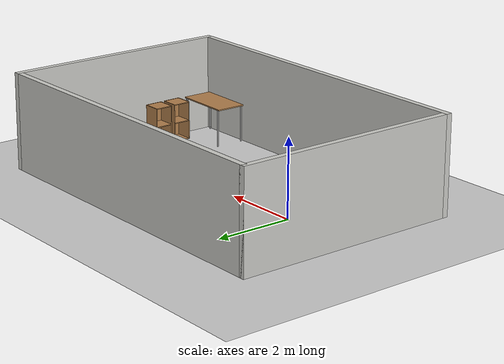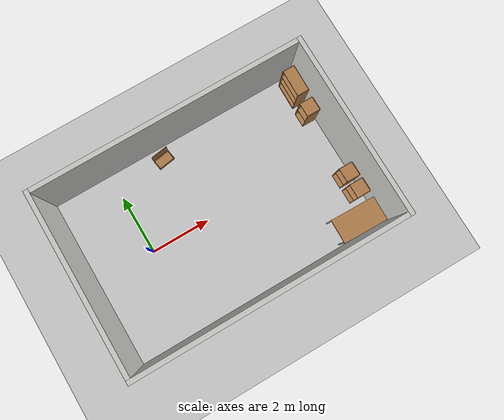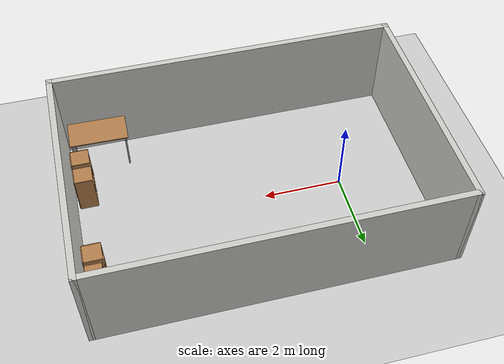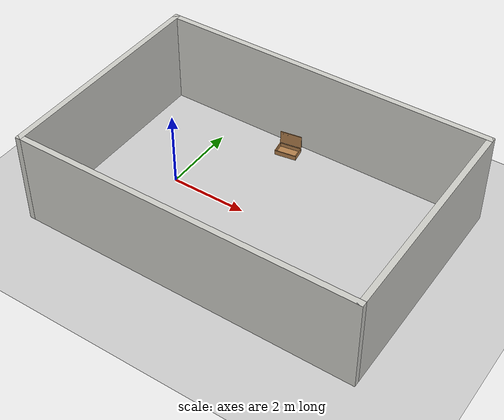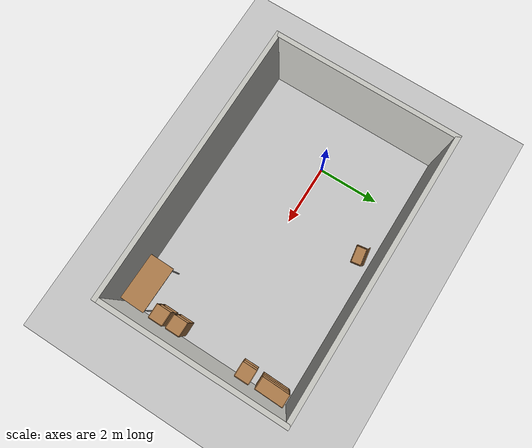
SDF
<sdf version="1.7">
 <world name="default">
  <light name="sun" type="directional">
   <pose>0 0 10 0 -0 0</pose>
   <diffuse>0.8 0.8 0.8 1</diffuse>
   <specular>0.2 0.2 0.2 1</specular>
   <attenuation>
    <range>1000</range>
    <constant>0.9</constant>
    <linear>0.01</linear>
    <quadratic>0.001</quadratic>
   </attenuation>
   <direction>-0.5 0.1 -0.9</direction>
   <spot><inner_angle>0</inner_angle><outer_angle>0</outer_angle><falloff>0</falloff></spot>
  </light>
  <model name="ground_plane">
   <static>1</static>
   <link name="link">
    <collision name="collision">
     <geometry><plane><normal>0 0 1</normal><size>100 100</size></plane></geometry>
     <surface><friction><ode><mu>100</mu><mu2>50</mu2></ode></friction></surface>
    </collision>
    <visual name="visual">
     <cast_shadows>0</cast_shadows>
     <geometry><plane><normal>0 0 1</normal><size>100 100</size></plane></geometry>
     <material>
      <script><uri>file://media/materials/scripts/gazebo.material</uri><name>Gazebo/Grey</name></script>
     </material>
    </visual>
   </link>
  </model>
  <gravity>0 0 -9.8</gravity>
  <magnetic_field>6e-06 2.3e-05 -4.2e-05</magnetic_field>
  <atmosphere type="adiabatic"/>
  <physics type="ode">
   <max_step_size>0.001</max_step_size>
   <real_time_factor>1</real_time_factor>
   <real_time_update_rate>1000</real_time_update_rate>
  </physics>
  <scene><ambient>0.4 0.4 0.4 1</ambient><background>0.7 0.7 0.7 1</background><shadows>1</shadows></scene>
  <audio><device>default</device></audio>
  <spherical_coordinates>
   <surface_model>EARTH_WGS84</surface_model>
   <latitude_deg>0</latitude_deg>
   <longitude_deg>0</longitude_deg>
   <elevation>0</elevation>
   <heading_deg>0</heading_deg>
  </spherical_coordinates>
  <model name="cabinet">
   <static>1</static>
   <link name="cabinet_bottom_plate">
    <inertial>
     <pose>0 0 -1 0 -0 0</pose>
     <inertia><ixx>2.05</ixx><ixy>0</ixy><ixz>0</ixz><iyy>2.05</iyy><iyz>0</iyz><izz>2.05</izz></inertia>
     <mass>25</mass>
    </inertial>
    <collision name="cabinet_bottom_plate_geom">
     <pose>0 0 0.01 0 -0 0</pose>
     <geometry><box><size>0.45 0.45 0.02</size></box></geometry>
    </collision>
    <visual name="cabinet_bottom_plate_geom_visual">
     <pose>0 0 0.01 0 -0 0</pose>
     <geometry><box><size>0.45 0.45 0.02</size></box></geometry>
     <material>
      <script><uri>file://media/materials/scripts/gazebo.material</uri><name>Gazebo/Wood</name></script>
     </material>
    </visual>
    <collision name="cabinet_bottom_plate_geom_cabinet_back_plate">
     <pose>0.235 0 0.51 0 -0 0</pose>
     <geometry><box><size>0.02 0.45 1.02</size></box></geometry>
    </collision>
    <visual name="cabinet_bottom_plate_geom_cabinet_back_plate_visual">
     <pose>0.235 0 0.51 0 -0 0</pose>
     <geometry><box><size>0.02 0.45 1.02</size></box></geometry>
     <material>
      <script><uri>file://media/materials/scripts/gazebo.material</uri><name>Gazebo/Wood</name></script>
     </material>
    </visual>
    <collision name="cabinet_bottom_plate_geom_cabinet_left_plate">
     <pose>0 0.235 0.51 0 -0 0</pose>
     <geometry><box><size>0.45 0.02 1.02</size></box></geometry>
    </collision>
    <visual name="cabinet_bottom_plate_geom_cabinet_left_plate_visual">
     <pose>0 0.235 0.51 0 -0 0</pose>
     <geometry><box><size>0.45 0.02 1.02</size></box></geometry>
     <material>
      <script><uri>file://media/materials/scripts/gazebo.material</uri><name>Gazebo/Wood</name></script>
     </material>
    </visual>
    <collision name="cabinet_bottom_plate_geom_cabinet_middle_plate">
     <pose>0 0 0.51 0 -0 0</pose>
     <geometry><box><size>0.45 0.45 0.02</size></box></geometry>
    </collision>
    <visual name="cabinet_bottom_plate_geom_cabinet_middle_plate_visual">
     <pose>0 0 0.51 0 -0 0</pose>
     <geometry><box><size>0.45 0.45 0.02</size></box></geometry>
     <material>
      <script><uri>file://media/materials/scripts/gazebo.material</uri><name>Gazebo/Wood</name></script>
     </material>
    </visual>
    <collision name="cabinet_bottom_plate_geom_cabinet_right_plate">
     <pose>0 -0.235 0.51 0 -0 0</pose>
     <geometry><box><size>0.45 0.02 1.02</size></box></geometry>
    </collision>
    <visual name="cabinet_bottom_plate_geom_cabinet_right_plate_visual">
     <pose>0 -0.235 0.51 0 -0 0</pose>
     <geometry><box><size>0.45 0.02 1.02</size></box></geometry>
     <material>
      <script><uri>file://media/materials/scripts/gazebo.material</uri><name>Gazebo/Wood</name></script>
     </material>
    </visual>
    <collision name="cabinet_bottom_plate_geom_cabinet_top_plate">
     <pose>0 0 1.01 0 -0 0</pose>
     <geometry><box><size>0.45 0.45 0.02</size></box></geometry>
    </collision>
    <visual name="cabinet_bottom_plate_geom_cabinet_top_plate_visual">
     <pose>0 0 1.01 0 -0 0</pose>
     <geometry><box><size>0.45 0.45 0.02</size></box></geometry>
     <material>
      <script><uri>file://media/materials/scripts/gazebo.material</uri><name>Gazebo/Wood</name></script>
     </material>
    </visual>
   </link>
   <pose>6.42502 -1.01228 0 0 -0 0</pose>
  </model>
  <model name="bookshelf">
   <static>1</static>
   <link name="link">
    <inertial><mass>1</mass></inertial>
    <collision name="back">
     <pose>0 0.005 0.6 0 -0 0</pose>
     <geometry><box><size>0.9 0.01 1.2</size></box></geometry>
    </collision>
    <visual name="visual1">
     <pose>0 0.005 0.6 0 -0 0</pose>
     <geometry><box><size>0.9 0.01 1.2</size></box></geometry>
     <material>
      <script><uri>file://media/materials/scripts/gazebo.material</uri><name>Gazebo/Wood</name></script>
     </material>
    </visual>
    <collision name="left_side">
     <pose>0.45 -0.195 0.6 0 -0 0</pose>
     <geometry><box><size>0.02 0.4 1.2</size></box></geometry>
    </collision>
    <visual name="visual2">
     <pose>0.45 -0.195 0.6 0 -0 0</pose>
     <geometry><box><size>0.02 0.4 1.2</size></box></geometry>
     <material>
      <script><uri>file://media/materials/scripts/gazebo.material</uri><name>Gazebo/Wood</name></script>
     </material>
    </visual>
    <collision name="right_side">
     <pose>-0.45 -0.195 0.6 0 -0 0</pose>
     <geometry><box><size>0.02 0.4 1.2</size></box></geometry>
    </collision>
    <visual name="visual3">
     <pose>-0.45 -0.195 0.6 0 -0 0</pose>
     <geometry><box><size>0.02 0.4 1.2</size></box></geometry>
     <material>
      <script><uri>file://media/materials/scripts/gazebo.material</uri><name>Gazebo/Wood</name></script>
     </material>
    </visual>
    <collision name="bottom">
     <pose>0 -0.195 0.03 0 -0 0</pose>
     <geometry><box><size>0.88 0.4 0.06</size></box></geometry>
    </collision>
    <visual name="visual4">
     <pose>0 -0.195 0.03 0 -0 0</pose>
     <geometry><box><size>0.88 0.4 0.06</size></box></geometry>
     <material>
      <script><uri>file://media/materials/scripts/gazebo.material</uri><name>Gazebo/Wood</name></script>
     </material>
    </visual>
    <collision name="top">
     <pose>0 -0.195 1.19 0 -0 0</pose>
     <geometry><box><size>0.88 0.4 0.02</size></box></geometry>
    </collision>
    <visual name="visual5">
     <pose>0 -0.195 1.19 0 -0 0</pose>
     <geometry><box><size>0.88 0.4 0.02</size></box></geometry>
     <material>
      <script><uri>file://media/materials/scripts/gazebo.material</uri><name>Gazebo/Wood</name></script>
     </material>
    </visual>
    <collision name="low_shelf">
     <pose>0 -0.195 0.43 0 -0 0</pose>
     <geometry><box><size>0.88 0.4 0.02</size></box></geometry>
    </collision>
    <visual name="visual6">
     <pose>0 -0.195 0.43 0 -0 0</pose>
     <geometry><box><size>0.88 0.4 0.02</size></box></geometry>
     <material>
      <script><uri>file://media/materials/scripts/gazebo.material</uri><name>Gazebo/Wood</name></script>
     </material>
    </visual>
    <collision name="high_shelf">
     <pose>0 -0.195 0.8 0 -0 0</pose>
     <geometry><box><size>0.88 0.4 0.02</size></box></geometry>
    </collision>
    <visual name="visual7">
     <pose>0 -0.195 0.8 0 -0 0</pose>
     <geometry><box><size>0.88 0.4 0.02</size></box></geometry>
     <material>
      <script><uri>file://media/materials/scripts/gazebo.material</uri><name>Gazebo/Wood</name></script>
     </material>
    </visual>
   </link>
   <pose>6.67985 2.24971 0 0 0 -1.58861</pose>
  </model>
  <model name="cabinet_0">
   <static>1</static>
   <link name="cabinet_bottom_plate">
    <inertial>
     <pose>0 0 -1 0 -0 0</pose>
     <inertia><ixx>2.05</ixx><ixy>0</ixy><ixz>0</ixz><iyy>2.05</iyy><iyz>0</iyz><izz>2.05</izz></inertia>
     <mass>25</mass>
    </inertial>
    <collision name="cabinet_bottom_plate_geom">
     <pose>0 0 0.01 0 -0 0</pose>
     <geometry><box><size>0.45 0.45 0.02</size></box></geometry>
    </collision>
    <visual name="cabinet_bottom_plate_geom_visual">
     <pose>0 0 0.01 0 -0 0</pose>
     <geometry><box><size>0.45 0.45 0.02</size></box></geometry>
     <material>
      <script><uri>file://media/materials/scripts/gazebo.material</uri><name>Gazebo/Wood</name></script>
     </material>
    </visual>
    <collision name="cabinet_bottom_plate_geom_cabinet_back_plate">
     <pose>0.235 0 0.51 0 -0 0</pose>
     <geometry><box><size>0.02 0.45 1.02</size></box></geometry>
    </collision>
    <visual name="cabinet_bottom_plate_geom_cabinet_back_plate_visual">
     <pose>0.235 0 0.51 0 -0 0</pose>
     <geometry><box><size>0.02 0.45 1.02</size></box></geometry>
     <material>
      <script><uri>file://media/materials/scripts/gazebo.material</uri><name>Gazebo/Wood</name></script>
     </material>
    </visual>
    <collision name="cabinet_bottom_plate_geom_cabinet_left_plate">
     <pose>0 0.235 0.51 0 -0 0</pose>
     <geometry><box><size>0.45 0.02 1.02</size></box></geometry>
    </collision>
    <visual name="cabinet_bottom_plate_geom_cabinet_left_plate_visual">
     <pose>0 0.235 0.51 0 -0 0</pose>
     <geometry><box><size>0.45 0.02 1.02</size></box></geometry>
     <material>
      <script><uri>file://media/materials/scripts/gazebo.material</uri><name>Gazebo/Wood</name></script>
     </material>
    </visual>
    <collision name="cabinet_bottom_plate_geom_cabinet_middle_plate">
     <pose>0 0 0.51 0 -0 0</pose>
     <geometry><box><size>0.45 0.45 0.02</size></box></geometry>
    </collision>
    <visual name="cabinet_bottom_plate_geom_cabinet_middle_plate_visual">
     <pose>0 0 0.51 0 -0 0</pose>
     <geometry><box><size>0.45 0.45 0.02</size></box></geometry>
     <material>
      <script><uri>file://media/materials/scripts/gazebo.material</uri><name>Gazebo/Wood</name></script>
     </material>
    </visual>
    <collision name="cabinet_bottom_plate_geom_cabinet_right_plate">
     <pose>0 -0.235 0.51 0 -0 0</pose>
     <geometry><box><size>0.45 0.02 1.02</size></box></geometry>
    </collision>
    <visual name="cabinet_bottom_plate_geom_cabinet_right_plate_visual">
     <pose>0 -0.235 0.51 0 -0 0</pose>
     <geometry><box><size>0.45 0.02 1.02</size></box></geometry>
     <material>
      <script><uri>file://media/materials/scripts/gazebo.material</uri><name>Gazebo/Wood</name></script>
     </material>
    </visual>
    <collision name="cabinet_bottom_plate_geom_cabinet_top_plate">
     <pose>0 0 1.01 0 -0 0</pose>
     <geometry><box><size>0.45 0.45 0.02</size></box></geometry>
    </collision>
    <visual name="cabinet_bottom_plate_geom_cabinet_top_plate_visual">
     <pose>0 0 1.01 0 -0 0</pose>
     <geometry><box><size>0.45 0.45 0.02</size></box></geometry>
     <material>
      <script><uri>file://media/materials/scripts/gazebo.material</uri><name>Gazebo/Wood</name></script>
     </material>
    </visual>
   </link>
   <pose>6.43574 -1.59065 0 0 -0 0</pose>
  </model>
  <model name="cabinet_1">
   <static>1</static>
   <link name="cabinet_bottom_plate">
    <inertial>
     <pose>0 0 -1 0 -0 0</pose>
     <inertia><ixx>2.05</ixx><ixy>0</ixy><ixz>0</ixz><iyy>2.05</iyy><iyz>0</iyz><izz>2.05</izz></inertia>
     <mass>25</mass>
    </inertial>
    <collision name="cabinet_bottom_plate_geom">
     <pose>0 0 0.01 0 -0 0</pose>
     <geometry><box><size>0.45 0.45 0.02</size></box></geometry>
    </collision>
    <visual name="cabinet_bottom_plate_geom_visual">
     <pose>0 0 0.01 0 -0 0</pose>
     <geometry><box><size>0.45 0.45 0.02</size></box></geometry>
     <material>
      <script><uri>file://media/materials/scripts/gazebo.material</uri><name>Gazebo/Wood</name></script>
     </material>
    </visual>
    <collision name="cabinet_bottom_plate_geom_cabinet_back_plate">
     <pose>0.235 0 0.51 0 -0 0</pose>
     <geometry><box><size>0.02 0.45 1.02</size></box></geometry>
    </collision>
    <visual name="cabinet_bottom_plate_geom_cabinet_back_plate_visual">
     <pose>0.235 0 0.51 0 -0 0</pose>
     <geometry><box><size>0.02 0.45 1.02</size></box></geometry>
     <material>
      <script><uri>file://media/materials/scripts/gazebo.material</uri><name>Gazebo/Wood</name></script>
     </material>
    </visual>
    <collision name="cabinet_bottom_plate_geom_cabinet_left_plate">
     <pose>0 0.235 0.51 0 -0 0</pose>
     <geometry><box><size>0.45 0.02 1.02</size></box></geometry>
    </collision>
    <visual name="cabinet_bottom_plate_geom_cabinet_left_plate_visual">
     <pose>0 0.235 0.51 0 -0 0</pose>
     <geometry><box><size>0.45 0.02 1.02</size></box></geometry>
     <material>
      <script><uri>file://media/materials/scripts/gazebo.material</uri><name>Gazebo/Wood</name></script>
     </material>
    </visual>
    <collision name="cabinet_bottom_plate_geom_cabinet_middle_plate">
     <pose>0 0 0.51 0 -0 0</pose>
     <geometry><box><size>0.45 0.45 0.02</size></box></geometry>
    </collision>
    <visual name="cabinet_bottom_plate_geom_cabinet_middle_plate_visual">
     <pose>0 0 0.51 0 -0 0</pose>
     <geometry><box><size>0.45 0.45 0.02</size></box></geometry>
     <material>
      <script><uri>file://media/materials/scripts/gazebo.material</uri><name>Gazebo/Wood</name></script>
     </material>
    </visual>
    <collision name="cabinet_bottom_plate_geom_cabinet_right_plate">
     <pose>0 -0.235 0.51 0 -0 0</pose>
     <geometry><box><size>0.45 0.02 1.02</size></box></geometry>
    </collision>
    <visual name="cabinet_bottom_plate_geom_cabinet_right_plate_visual">
     <pose>0 -0.235 0.51 0 -0 0</pose>
     <geometry><box><size>0.45 0.02 1.02</size></box></geometry>
     <material>
      <script><uri>file://media/materials/scripts/gazebo.material</uri><name>Gazebo/Wood</name></script>
     </material>
    </visual>
    <collision name="cabinet_bottom_plate_geom_cabinet_top_plate">
     <pose>0 0 1.01 0 -0 0</pose>
     <geometry><box><size>0.45 0.45 0.02</size></box></geometry>
    </collision>
    <visual name="cabinet_bottom_plate_geom_cabinet_top_plate_visual">
     <pose>0 0 1.01 0 -0 0</pose>
     <geometry><box><size>0.45 0.45 0.02</size></box></geometry>
     <material>
      <script><uri>file://media/materials/scripts/gazebo.material</uri><name>Gazebo/Wood</name></script>
     </material>
    </visual>
   </link>
   <pose>6.47262 1.35958 0 0 -0 0</pose>
  </model>
  <model name="table">
   <static>1</static>
   <link name="link">
    <collision name="surface">
     <pose>0 0 1 0 -0 0</pose>
     <geometry><box><size>1.5 0.8 0.03</size></box></geometry>
     <surface><friction><ode><mu>0.6</mu><mu2>0.6</mu2></ode></friction></surface>
    </collision>
    <visual name="visual1">
     <pose>0 0 1 0 -0 0</pose>
     <geometry><box><size>1.5 0.8 0.03</size></box></geometry>
     <material>
      <script><uri>file://media/materials/scripts/gazebo.material</uri><name>Gazebo/Wood</name></script>
     </material>
    </visual>
    <collision name="front_left_leg">
     <pose>0.68 0.38 0.5 0 -0 0</pose>
     <geometry><cylinder><radius>0.02</radius><length>1</length></cylinder></geometry>
    </collision>
    <visual name="front_left_leg">
     <pose>0.68 0.38 0.5 0 -0 0</pose>
     <geometry><cylinder><radius>0.02</radius><length>1</length></cylinder></geometry>
     <material>
      <script><uri>file://media/materials/scripts/gazebo.material</uri><name>Gazebo/Grey</name></script>
     </material>
    </visual>
    <collision name="front_right_leg">
     <pose>0.68 -0.38 0.5 0 -0 0</pose>
     <geometry><cylinder><radius>0.02</radius><length>1</length></cylinder></geometry>
    </collision>
    <visual name="front_right_leg">
     <pose>0.68 -0.38 0.5 0 -0 0</pose>
     <geometry><cylinder><radius>0.02</radius><length>1</length></cylinder></geometry>
     <material>
      <script><uri>file://media/materials/scripts/gazebo.material</uri><name>Gazebo/Grey</name></script>
     </material>
    </visual>
    <collision name="back_right_leg">
     <pose>-0.68 -0.38 0.5 0 -0 0</pose>
     <geometry><cylinder><radius>0.02</radius><length>1</length></cylinder></geometry>
    </collision>
    <visual name="back_right_leg">
     <pose>-0.68 -0.38 0.5 0 -0 0</pose>
     <geometry><cylinder><radius>0.02</radius><length>1</length></cylinder></geometry>
     <material>
      <script><uri>file://media/materials/scripts/gazebo.material</uri><name>Gazebo/Grey</name></script>
     </material>
    </visual>
    <collision name="back_left_leg">
     <pose>-0.68 0.38 0.5 0 -0 0</pose>
     <geometry><cylinder><radius>0.02</radius><length>1</length></cylinder></geometry>
    </collision>
    <visual name="back_left_leg">
     <pose>-0.68 0.38 0.5 0 -0 0</pose>
     <geometry><cylinder><radius>0.02</radius><length>1</length></cylinder></geometry>
     <material>
      <script><uri>file://media/materials/scripts/gazebo.material</uri><name>Gazebo/Grey</name></script>
     </material>
    </visual>
   </link>
   <pose>5.88996 -2.40596 0 0 -0 3.12172</pose>
  </model>
  <model name="wooden_case">
   <link name="base">
    <pose>0 0 0.024 0 -0 0</pose>
    <inertial>
     <pose>-0.022184 0 0.171592 0 -0 0</pose>
     <mass>3.96264</mass>
     <inertia>
      <ixx>0.213536</ixx>
      <ixy>0</ixy>
      <ixz>0.000779377</ixz>
      <iyy>0.0708943</iyy>
      <iyz>0</iyz>
      <izz>0.154604</izz>
     </inertia>
    </inertial>
    <collision name="collision_back">
     <pose>-0.053975 0 0.1778 0 -0 0</pose>
     <geometry><box><size>0.01905 0.5461 0.3175</size></box></geometry>
     <surface>
      <contact>
       <poissons_ratio>0.347</poissons_ratio>
       <elastic_modulus>8.8e+09</elastic_modulus>
       <ode><kp>100000</kp><kd>100</kd><max_vel>100</max_vel><min_depth>0.001</min_depth></ode>
      </contact>
      <friction>
       <torsional>
        <coefficient>1</coefficient>
        <use_patch_radius>0</use_patch_radius>
        <surface_radius>0.01</surface_radius>
       </torsional>
      </friction>
     </surface>
    </collision>
    <visual name="visual_back">
     <pose>-0.053975 0 0.1778 0 -0 0</pose>
     <geometry><box><size>0.01905 0.5461 0.3175</size></box></geometry>
     <material>
      <script><uri>file://media/materials/scripts/gazebo.material</uri><name>Gazebo/Wood</name></script>
     </material>
    </visual>
    <collision name="collision_bottom">
     <pose>0 0 0.009525 0 -0 0</pose>
     <geometry><box><size>0.127 0.5842 0.01905</size></box></geometry>
     <surface>
      <contact>
       <poissons_ratio>0.347</poissons_ratio>
       <elastic_modulus>8.8e+09</elastic_modulus>
       <ode><kp>100000</kp><kd>100</kd><max_vel>100</max_vel><min_depth>0.001</min_depth></ode>
      </contact>
      <friction>
       <torsional>
        <coefficient>1</coefficient>
        <use_patch_radius>0</use_patch_radius>
        <surface_radius>0.01</surface_radius>
       </torsional>
      </friction>
     </surface>
    </collision>
    <visual name="visual_bottom">
     <pose>0 0 0.009525 0 -0 0</pose>
     <geometry><box><size>0.127 0.5842 0.01905</size></box></geometry>
     <material>
      <script><uri>file://media/materials/scripts/gazebo.material</uri><name>Gazebo/Wood</name></script>
     </material>
    </visual>
    <collision name="collision_top">
     <pose>0 0 0.346075 0 -0 0</pose>
     <geometry><box><size>0.127 0.5842 0.01905</size></box></geometry>
     <surface>
      <contact>
       <poissons_ratio>0.347</poissons_ratio>
       <elastic_modulus>8.8e+09</elastic_modulus>
       <ode><kp>100000</kp><kd>100</kd><max_vel>100</max_vel><min_depth>0.001</min_depth></ode>
      </contact>
      <friction>
       <torsional>
        <coefficient>1</coefficient>
        <use_patch_radius>0</use_patch_radius>
        <surface_radius>0.01</surface_radius>
       </torsional>
      </friction>
     </surface>
    </collision>
    <visual name="visual_top">
     <pose>0 0 0.346075 0 -0 0</pose>
     <geometry><box><size>0.127 0.5842 0.01905</size></box></geometry>
     <material>
      <script><uri>file://media/materials/scripts/gazebo.material</uri><name>Gazebo/Wood</name></script>
     </material>
    </visual>
    <collision name="collision_left">
     <pose>0 -0.282575 0.1778 0 -0 0</pose>
     <geometry><box><size>0.127 0.01905 0.3175</size></box></geometry>
     <surface>
      <contact>
       <poissons_ratio>0.347</poissons_ratio>
       <elastic_modulus>8.8e+09</elastic_modulus>
       <ode><kp>100000</kp><kd>100</kd><max_vel>100</max_vel><min_depth>0.001</min_depth></ode>
      </contact>
      <friction>
       <torsional>
        <coefficient>1</coefficient>
        <use_patch_radius>0</use_patch_radius>
        <surface_radius>0.01</surface_radius>
       </torsional>
      </friction>
     </surface>
    </collision>
    <visual name="visual_left">
     <pose>0 -0.282575 0.1778 0 -0 0</pose>
     <geometry><box><size>0.127 0.01905 0.3175</size></box></geometry>
     <material>
      <script><uri>file://media/materials/scripts/gazebo.material</uri><name>Gazebo/Wood</name></script>
     </material>
    </visual>
    <collision name="collision_right">
     <pose>0 0.282575 0.1778 0 -0 0</pose>
     <geometry><box><size>0.127 0.01905 0.3175</size></box></geometry>
     <surface>
      <contact>
       <poissons_ratio>0.347</poissons_ratio>
       <elastic_modulus>8.8e+09</elastic_modulus>
       <ode><kp>100000</kp><kd>100</kd><max_vel>100</max_vel><min_depth>0.001</min_depth></ode>
      </contact>
      <friction>
       <torsional>
        <coefficient>1</coefficient>
        <use_patch_radius>0</use_patch_radius>
        <surface_radius>0.01</surface_radius>
       </torsional>
      </friction>
     </surface>
    </collision>
    <visual name="visual_right">
     <pose>0 0.282575 0.1778 0 -0 0</pose>
     <geometry><box><size>0.127 0.01905 0.3175</size></box></geometry>
     <material>
      <script><uri>file://media/materials/scripts/gazebo.material</uri><name>Gazebo/Wood</name></script>
     </material>
    </visual>
    <collision name="collision_block_left">
     <pose>0.0095 -0.2151 -0.012 0 -0 0</pose>
     <geometry><box><size>0.108 0.05 0.024</size></box></geometry>
     <surface>
      <contact>
       <poissons_ratio>0.347</poissons_ratio>
       <elastic_modulus>8.8e+09</elastic_modulus>
       <ode><kp>100000</kp><kd>100</kd><max_vel>100</max_vel><min_depth>0.001</min_depth></ode>
      </contact>
      <friction>
       <torsional>
        <coefficient>1</coefficient>
        <use_patch_radius>0</use_patch_radius>
        <surface_radius>0.01</surface_radius>
       </torsional>
      </friction>
     </surface>
    </collision>
    <visual name="visual_block_left">
     <pose>0.0095 -0.2151 -0.012 0 -0 0</pose>
     <geometry><box><size>0.108 0.05 0.024</size></box></geometry>
     <material>
      <script><uri>file://media/materials/scripts/gazebo.material</uri><name>Gazebo/Wood</name></script>
     </material>
    </visual>
    <collision name="collision_block_right">
     <pose>0.0095 0.2151 -0.012 0 -0 0</pose>
     <geometry><box><size>0.108 0.05 0.024</size></box></geometry>
     <surface>
      <contact>
       <poissons_ratio>0.347</poissons_ratio>
       <elastic_modulus>8.8e+09</elastic_modulus>
       <ode><kp>100000</kp><kd>100</kd><max_vel>100</max_vel><min_depth>0.001</min_depth></ode>
      </contact>
      <friction>
       <torsional>
        <coefficient>1</coefficient>
        <use_patch_radius>0</use_patch_radius>
        <surface_radius>0.01</surface_radius>
       </torsional>
      </friction>
     </surface>
    </collision>
    <visual name="visual_block_right">
     <pose>0.0095 0.2151 -0.012 0 -0 0</pose>
     <geometry><box><size>0.108 0.05 0.024</size></box></geometry>
     <material>
      <script><uri>file://media/materials/scripts/gazebo.material</uri><name>Gazebo/Wood</name></script>
     </material>
    </visual>
   </link>
   <link name="lid">
    <pose>0.243775 0 0.009525 0 -0 0</pose>
    <inertial>
     <mass>1.97874</mass>
     <inertia>
      <ixx>0.0563367</ixx>
      <ixy>0</ixy>
      <ixz>0</ixz>
      <iyy>0.020911</iyy>
      <iyz>0</iyz>
      <izz>0.0771281</izz>
     </inertia>
    </inertial>
    <collision name="collision">
     <geometry><box><size>0.3556 0.5842 0.01905</size></box></geometry>
     <surface>
      <contact>
       <poissons_ratio>0.347</poissons_ratio>
       <elastic_modulus>8.8e+09</elastic_modulus>
       <ode><kp>100000</kp><kd>100</kd><max_vel>100</max_vel><min_depth>0.001</min_depth></ode>
      </contact>
      <friction>
       <torsional>
        <coefficient>1</coefficient>
        <use_patch_radius>0</use_patch_radius>
        <surface_radius>0.01</surface_radius>
       </torsional>
      </friction>
     </surface>
    </collision>
    <visual name="visual">
     <geometry><box><size>0.3556 0.5842 0.01905</size></box></geometry>
     <material>
      <script><uri>file://media/materials/scripts/gazebo.material</uri><name>Gazebo/Wood</name></script>
     </material>
    </visual>
    <visual name="tee_nut_1">
     <pose>0.122 -0.216 0 0 -0 0</pose>
     <geometry><cylinder><radius>0.00635</radius><length>0.0192405</length></cylinder></geometry>
     <material>
      <script><uri>file://media/materials/scripts/gazebo.material</uri><name>Gazebo/Grey</name></script>
     </material>
    </visual>
    <visual name="tee_nut_2">
     <pose>0.122 -0.088 0 0 -0 0</pose>
     <geometry><cylinder><radius>0.00635</radius><length>0.0192405</length></cylinder></geometry>
     <material>
      <script><uri>file://media/materials/scripts/gazebo.material</uri><name>Gazebo/Grey</name></script>
     </material>
    </visual>
    <visual name="tee_nut_3">
     <pose>0.122 0.088 0 0 -0 0</pose>
     <geometry><cylinder><radius>0.00635</radius><length>0.0192405</length></cylinder></geometry>
     <material>
      <script><uri>file://media/materials/scripts/gazebo.material</uri><name>Gazebo/Grey</name></script>
     </material>
    </visual>
    <visual name="tee_nut_4">
     <pose>0.122 0.216 0 0 -0 0</pose>
     <geometry><cylinder><radius>0.00635</radius><length>0.0192405</length></cylinder></geometry>
     <material>
      <script><uri>file://media/materials/scripts/gazebo.material</uri><name>Gazebo/Grey</name></script>
     </material>
    </visual>
   </link>
   <joint name="lid_hinge" type="revolute">
    <pose>-0.1778 0 0.01905 0 -0 0</pose>
    <parent>base</parent>
    <child>lid</child>
    <axis>
     <xyz>0 1 0</xyz>
     <limit><upper>0.523599</upper><lower>-1.5708</lower></limit>
     <dynamics><spring_reference>0</spring_reference><spring_stiffness>0</spring_stiffness></dynamics>
    </axis>
   </joint>
   <pose>1.73029 2.62702 0.06247 0 -1.57079 1.72347</pose>
  </model>
  <model name="smaller_room_wall">
   <pose>2.385 -0.005 0 0 -0 0</pose>
   <link name="Wall_0">
    <collision name="Wall_0_Collision">
     <geometry><box><size>6 0.15 2.5</size></box></geometry>
     <pose>0 0 1.25 0 -0 0</pose>
    </collision>
    <visual name="Wall_0_Visual">
     <pose>0 0 1.25 0 -0 0</pose>
     <geometry><box><size>6 0.15 2.5</size></box></geometry>
     <material>
      <script><uri>file://media/materials/scripts/gazebo.material</uri><name>Gazebo/CeilingTiled</name></script>
      <ambient>1 1 1 1</ambient>
     </material>
     <meta><layer>0</layer></meta>
    </visual>
    <pose>-4.425 0 0 0 -0 1.5708</pose>
   </link>
   <link name="Wall_2">
    <collision name="Wall_2_Collision">
     <geometry><box><size>9 0.15 2.5</size></box></geometry>
     <pose>0 0 1.25 0 -0 0</pose>
    </collision>
    <visual name="Wall_2_Visual">
     <pose>0 0 1.25 0 -0 0</pose>
     <geometry><box><size>9 0.15 2.5</size></box></geometry>
     <material>
      <script><uri>file://media/materials/scripts/gazebo.material</uri><name>Gazebo/CeilingTiled</name></script>
      <ambient>1 1 1 1</ambient>
     </material>
     <meta><layer>0</layer></meta>
    </visual>
    <pose>0 2.925 0 0 -0 0</pose>
   </link>
   <link name="Wall_3">
    <collision name="Wall_3_Collision">
     <geometry><box><size>6 0.15 2.5</size></box></geometry>
     <pose>0 0 1.25 0 -0 0</pose>
    </collision>
    <visual name="Wall_3_Visual">
     <pose>0 0 1.25 0 -0 0</pose>
     <geometry><box><size>6 0.15 2.5</size></box></geometry>
     <material>
      <script><uri>file://media/materials/scripts/gazebo.material</uri><name>Gazebo/CeilingTiled</name></script>
      <ambient>1 1 1 1</ambient>
     </material>
     <meta><layer>0</layer></meta>
    </visual>
    <pose>4.425 0 0 0 -0 -1.5708</pose>
   </link>
   <link name="Wall_4">
    <collision name="Wall_4_Collision">
     <geometry><box><size>9 0.15 2.5</size></box></geometry>
     <pose>0 0 1.25 0 -0 0</pose>
    </collision>
    <visual name="Wall_4_Visual">
     <pose>0 0 1.25 0 -0 0</pose>
     <geometry><box><size>9 0.15 2.5</size></box></geometry>
     <material>
      <script><uri>file://media/materials/scripts/gazebo.material</uri><name>Gazebo/CeilingTiled</name></script>
      <ambient>1 1 1 1</ambient>
     </material>
     <meta><layer>0</layer></meta>
    </visual>
    <pose>0 -2.925 0 0 -0 3.14159</pose>
   </link>
   <static>1</static>
  </model>
 </world>
</sdf>
